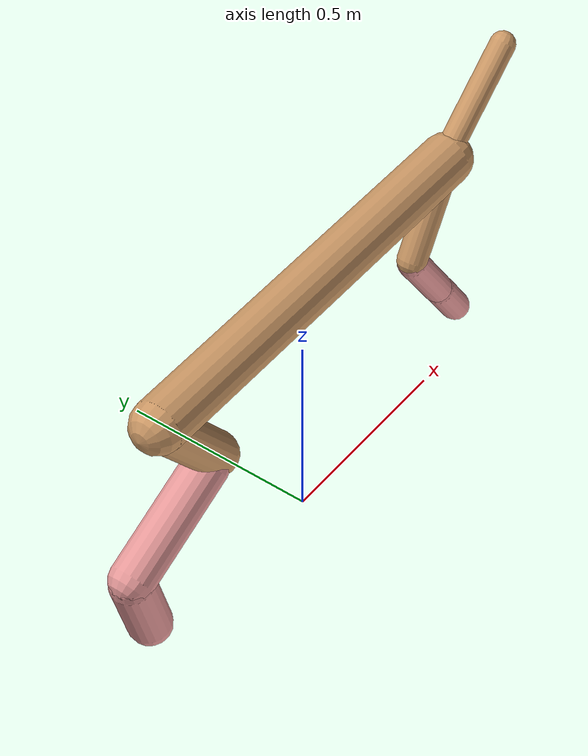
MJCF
<mujoco model="cheetah">
  <compiler angle="radian" coordinate="local" inertiafromgeom="true" settotalmass="14" />
  <default>
    <joint armature=".1" damping=".01" limited="true" solimplimit="0 .8 .03" solreflimit=".02 1" stiffness="8" />
    <geom conaffinity="0" condim="3" contype="1" friction="0.8 .1 .1" rgba="0.8 0.6 .4 1" solimp="0.0 0.8 0.01" solref="0.02 1" />
    <motor ctrllimited="true" ctrlrange="-1 1" />
  </default>
  <size nstack="300000" nuser_geom="1" />
  <option gravity="0 0 -9.81" timestep="0.01" />
  <worldbody>
    <body name="torso" pos="0.0 0.0 0.6761338162518684">
      <joint armature="0" axis="1 0 0" damping="0" limited="false" name="ignorex" pos="0 0 0" stiffness="0" type="slide" />
      <joint armature="0" axis="0 0 1" damping="0" limited="false" name="ignorez" pos="0 0 0" stiffness="0" type="slide" />
      <joint armature="0" axis="0 1 0" damping="0" limited="false" name="ignorey" pos="0 0 0" stiffness="0" type="hinge" />
      <geom fromto="-0.5 0.0 0.0 0.5527482491922014 0.0 0.0" name="torso" size="0.06296231653408377" type="capsule" />
      <geom axisangle="0 1 0 .87" name="head" pos="0.6527482491922013 0.0 0.1" size="0.031072615636156986 0.15" type="capsule" />

      <body name="bthigh" pos="-.5 0 0">
        <joint axis="0 1 0" damping="6" name="bthigh" pos="0 0 0" range="-.52 1.05" stiffness="240" type="hinge" />
        <geom axisangle="0 1 0 -3.8" name="bthigh" pos="0.09821189575212753 0.0 -0.1276754644777658" size="0.05259872968318026 0.14206729098010248" type="capsule" />
        <body name="bshin" pos="0.15642379150425506 0.0 -0.24535092895553157">
          <joint axis="0 1 0" damping="4.5" name="bshin" pos="0 0 0" range="-.785 .785" stiffness="180" type="hinge" />
          <geom axisangle="0 1 0 -2.03" name="bshin" pos="-0.1372864537682548 0.0 -0.0686432268841274" rgba="0.9 0.6 0.6 1" size="0.05259872968318026 0.14696616308286464" type="capsule" />
          <body name="bfoot" pos="-0.2745729075365096 0.0 -0.1372864537682548">
            <joint axis="0 1 0" damping="3" name="bfoot" pos="0 0 0" range="-.4 .785" stiffness="120" type="hinge" />
            <geom axisangle="0 1 0 -.27" name="bfoot" pos="0.029438251642600718 0.0 -0.09518368031107566" rgba="0.9 0.6 0.6 1" size="0.05259872968318026 0.09209879553192851" type="capsule" />
            <inertial mass="10" />
          </body>
        </body>
      </body>
      <body name="fthigh" pos="0.5527482491922013 0.0 0.0">
        <joint axis="0 1 0" damping="4.5" name="fthigh" pos="0 0 0" range="-1.5 0.8" stiffness="180" type="hinge" />
        <geom axisangle="0 1 0 .52" name="fthigh" pos="-0.06565283244668525 0.0 -0.11254771276574613" size="0.03636791272640299 0.12437245975040304" type="capsule" />
        <body name="fshin" pos="-0.1313056648933705 0.0 -0.22509542553149225">
          <joint axis="0 1 0" damping="3" name="fshin" pos="0 0 0" range="-1.2 1.1" stiffness="120" type="hinge" />
          <geom axisangle="0 1 0 -.6" name="fshin" pos="0.060974117354741286 0.0 -0.0844257009527187" rgba="0.9 0.6 0.6 1" size="0.03636791272640299 0.09912391528979489" type="capsule" />
          <body name="ffoot" pos="0.12194823470948257 0.0 -0.1688514019054374">
            <joint axis="0 1 0" damping="1.5" name="ffoot" pos="0 0 0" range="-3.1 -0.3" stiffness="60" type="hinge" />
            <geom axisangle="0 1 0 -.6" name="ffoot" pos="0.04254452216614088 0.0 -0.06618036781399694" rgba="0.9 0.6 0.6 1" size="0.03636791272640299 0.06545918934231738" type="capsule" />
            <inertial mass="10" />
          </body>
        </body>
      </body>
    </body>
  </worldbody>
  <actuator>
    <motor gear="120" joint="bthigh" name="bthigh" />
    <motor gear="90" joint="bshin" name="bshin" />
    <motor gear="60" joint="bfoot" name="bfoot" />
    <motor gear="120" joint="fthigh" name="fthigh" />
    <motor gear="60" joint="fshin" name="fshin" />
    <motor gear="30" joint="ffoot" name="ffoot" />
  </actuator>
</mujoco>
